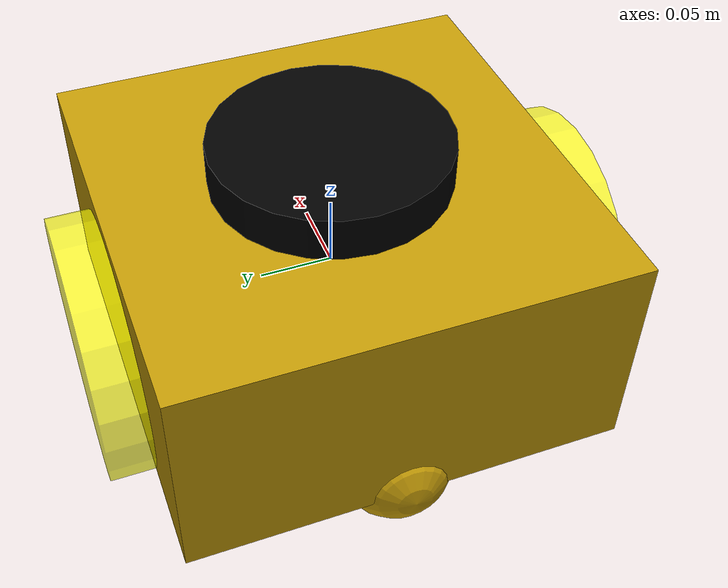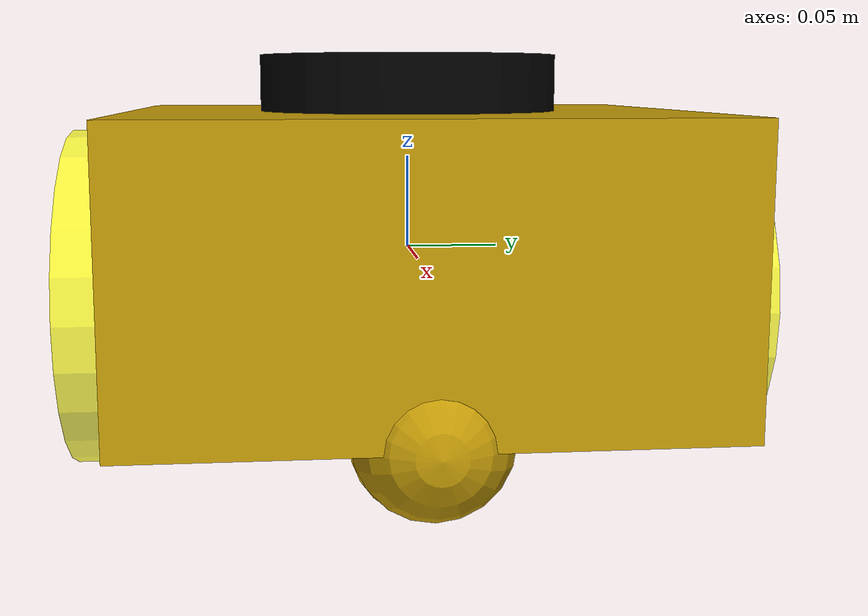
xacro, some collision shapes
<?xml version="1.0"?>
<robot name="diffbot" xmlns:xacro="http://www.ros.org/wiki/xacro">

    <material name="yellow_light">
        <color rgba="1.0 1.0 0.0 0.7"/>
    </material>

    <material name ='wooden'>
        <color rgba='0.76 0.60 0.024 1'/>
    </material>

    <material name ='black'>
        <color rgba='0.0 0.0 0.0 1'/>
    </material>

    <link name="base_link">
    </link>

    <link name="base_footprint">
    </link>

    <joint name="footprint_joint" type="fixed">
        <parent link="base_link"/>
        <child link="base_footprint"/>
        <origin xyz="0 0 0" rpy="0 0 0"/>
    </joint>

    <!-- B O D Y - Updated to 30x30cm -->
    <link name="chassis">
        <visual>
            <geometry>
                <box size="0.3 0.3 0.15"/>
            </geometry>
            <material name="wooden"/>
        </visual>

        <collision>
            <geometry>
                <box size="0.3 0.3 0.15"/>
            </geometry>
        </collision>

        <inertial>
            <mass value="0.1"/>
            <origin rpy="0 0 0" xyz="0 0 0"/>
            <!-- Updated inertia for 30x30cm chassis -->
            <inertia ixx="0.001125" ixy="0" ixz="0" iyy="0.001125" iyz="0" izz="0.0015"/>
        </inertial>

    </link>

    <joint name="base_link_joint" type="fixed">
        <origin rpy="0 0 1.57" xyz="0 0 0" />
        <parent link="base_link" />
        <child link="chassis" />
    </joint>

    <!-- Wheel Left - Position adjusted for 30cm width -->
    <link name="left_wheel">
        <visual>
            <origin rpy="0 1.5707 0" xyz="0 0 0"/>
            <geometry>
                <cylinder length="0.06" radius="0.09"/>
            </geometry>
            <material name="yellow_light"/>
        </visual>

        <collision>
            <origin rpy="0 1.5707 0" xyz="0 0 0"/>
            <geometry>
                <cylinder length="0.06" radius="0.09"/>
            </geometry>
        </collision>

        <inertial>
            <origin rpy="0 1.5707 0" xyz="0 0 0"/>
            <mass value="0.1"/>
            <inertia ixx="0.00023250000000000004" ixy="0" ixz="0" iyy="0.00023250000000000004" iyz="0" izz="0.000405"/>
        </inertial>
    </link>

    <gazebo reference="left_wheel">
        <kp>100000000000000000000.0</kp>
        <kd>100000000000000000000.0</kd>
        <mu1>10</mu1>
        <mu2>10</mu2>
        <material>Gazebo/Black</material>
    </gazebo>

    <joint name="joint_left_wheel" type="continuous">
        <!-- Updated position: 15cm from center for 30cm chassis -->
        <origin rpy="0 0 0" xyz="0.15 0 -0.025"/>
        <child link="left_wheel"/>
        <parent link="chassis"/>
        <axis rpy="0 0 0" xyz="1 0 0"/>
        <limit effort="10000" velocity="1000"/>
        <joint_properties damping="1.0" friction="1.0"/>
    </joint>

    <!-- Wheel Right - Position adjusted for 30cm width -->
    <link name="right_wheel">
        <visual>
            <origin rpy="0 1.5707 0" xyz="0 0 0"/>
            <geometry>
                <cylinder length="0.06" radius="0.09"/>
            </geometry>
            <material name="yellow_light"/>
        </visual>

        <collision>
            <origin rpy="0 1.5707 0" xyz="0 0 0"/>
            <geometry>
                <cylinder length="0.06" radius="0.09"/>
            </geometry>
        </collision>

        <inertial>
            <origin rpy="0 1.5707 0" xyz="0 0 0"/>
            <mass value="0.1"/>
            <inertia ixx="0.00023250000000000004" ixy="0" ixz="0" iyy="0.00023250000000000004" iyz="0" izz="0.000405"/>
        </inertial>
    </link>

    <gazebo reference="right_wheel">
        <kp>100000000000000000000.0</kp>
        <kd>100000000000000000000.0</kd>
        <mu1>10</mu1>
        <mu2>10</mu2>
        <material>Gazebo/Black</material>
    </gazebo>

    <joint name="joint_right_wheel" type="continuous">
        <!-- Updated position: -15cm from center for 30cm chassis -->
        <origin rpy="0 0 0" xyz="-0.15 0 -0.025"/>
        <child link="right_wheel"/>
        <parent link="chassis"/>
        <axis rpy="0 0 0" xyz="1 0 0"/>
        <limit effort="10000" velocity="1000"/>
        <joint_properties damping="1.0" friction="1.0"/>
    </joint>

    <!-- Caster Wheel Front - Position adjusted for 30cm length -->
    <link name="front_yaw_link">
        <visual>
            <origin rpy="0 1.5707 1.5707" xyz="0 0 0"/>
            <geometry>
              <cylinder length="0.005" radius="0.04"/>
            </geometry>
            <material name="wooden"/>
        </visual>

        <collision>
            <origin rpy="0 1.5707 1.5707" xyz="0 0 0"/>
            <geometry>
                <cylinder length="0.005" radius="0.04"/>
            </geometry>
        </collision>

        <inertial>
            <origin rpy="0 1.5707 1.5707" xyz="0 0 0"/>
            <mass value="0.001"/>
            <inertia ixx="4.020833333333333e-07" ixy="0" ixz="0" iyy="4.020833333333333e-07" iyz="0" izz="8.000000000000001e-07"/>
        </inertial>
    </link>

    <joint name="front_yaw_joint" type="continuous">
        <!-- Updated position: 12cm from center for 30cm chassis (leaving 6cm margin) -->
        <origin rpy="0 0 0" xyz="0 -0.12 -0.075"/>
        <parent link="chassis" />
        <child link="front_yaw_link" />
        <axis xyz="0 0 1" />
        <limit effort="1000.0" velocity="100.0" />
        <dynamics damping="0.0" friction="0.1"/>
    </joint>

    <gazebo reference="front_yaw_link">
        <material>Gazebo/Purple</material>
    </gazebo>

    <link name="front_roll_link">
        <visual>
            <origin rpy="0 1.5707 1.5707" xyz="0 0 0"/>
            <geometry>
                <cylinder length="0.005" radius="0.04"/>
            </geometry>
            <material name="wooden"/>
        </visual>

        <collision>
            <origin rpy="0 1.5707 1.5707" xyz="0 0 0"/>
            <geometry>
                <cylinder length="0.005" radius="0.04"/>
            </geometry>
        </collision>

        <inertial>
            <origin rpy="0 1.5707 1.5707" xyz="0 0 0"/>
            <mass value="0.001"/>
            <inertia ixx="4.020833333333333e-07" ixy="0" ixz="0" iyy="4.020833333333333e-07" iyz="0" izz="8.000000000000001e-07"/>
        </inertial>
    </link>

    <joint name="front_roll_joint" type="continuous">
        <origin rpy="0 0 0" xyz="0 0 0" />
        <parent link="front_yaw_link" />
        <child link="front_roll_link" />
        <axis xyz="1 0 0" />
        <limit effort="1000.0" velocity="100.0" />
        <dynamics damping="0.0" friction="0.1"/>
    </joint>

    <gazebo reference="front_roll_link">
        <material>Gazebo/Purple</material>
    </gazebo>

    <link name="front_pitch_link">
        <visual>
            <origin rpy="0 1.5707 1.5707" xyz="0 0 0"/>
            <geometry>
                <sphere radius="0.04"/>
            </geometry>
            <material name="wooden"/>
        </visual>

        <collision>
            <origin rpy="0 1.5707 1.5707" xyz="0 0 0"/>
            <geometry>
                <sphere radius="0.04"/>
            </geometry>
        </collision>

        <inertial>
            <origin rpy="0 1.5707 1.5707" xyz="0 0 0"/>
            <mass value="0.001"/>
            <inertia ixx="6.4e-07" ixy="0" ixz="0" iyy="6.4e-07" iyz="0" izz="6.4e-07"/>
        </inertial>
    </link>

    <gazebo reference="front_pitch_link">
        <kp>100000000000000.0</kp>
        <kd>100000000000000.0</kd>
        <mu1>0.5</mu1>
        <mu2>0.5</mu2>
        <material>Gazebo/Purple</material>
    </gazebo>

    <joint name="front_pitch_joint" type="continuous">
        <origin rpy="0 0 0" xyz="0 0 0" />
        <parent link="front_roll_link" />
        <child link="front_pitch_link" />
        <axis xyz="0 1 0" />
        <limit effort="1000.0" velocity="100.0" />
        <dynamics damping="0.0" friction="0.1"/>
    </joint>

    <!-- Caster Wheel Back - Position adjusted for 30cm length -->
    <link name="back_yaw_link">
        <visual>
            <origin rpy="0 1.5707 1.5707" xyz="0 0 0"/>
            <geometry>
              <cylinder length="0.005" radius="0.04"/>
            </geometry>
            <material name="wooden"/>
        </visual>

        <collision>
            <origin rpy="0 1.5707 1.5707" xyz="0 0 0"/>
            <geometry>
                <cylinder length="0.005" radius="0.04"/>
            </geometry>
        </collision>

        <inertial>
            <origin rpy="0 1.5707 1.5707" xyz="0 0 0"/>
            <mass value="0.001"/>
            <inertia ixx="4.020833333333333e-07" ixy="0" ixz="0" iyy="4.020833333333333e-07" iyz="0" izz="8.000000000000001e-07"/>
        </inertial>
    </link>

    <joint name="back_yaw_joint" type="continuous">
        <!-- Updated position: +12cm from center for 30cm chassis (leaving 6cm margin) -->
        <origin rpy="0 0 0" xyz="0 0.12 -0.075"/>
        <parent link="chassis" />
        <child link="back_yaw_link" />
        <axis xyz="0 0 1" />
        <limit effort="1000.0" velocity="100.0" />
        <dynamics damping="0.0" friction="0.1"/>
    </joint>

    <gazebo reference="back_yaw_link">
        <material>Gazebo/Purple</material>
    </gazebo>

    <link name="back_roll_link">
        <visual>
            <origin rpy="0 1.5707 1.5707" xyz="0 0 0"/>
            <geometry>
                <cylinder length="0.005" radius="0.04"/>
            </geometry>
            <material name="wooden"/>
        </visual>

        <collision>
            <origin rpy="0 1.5707 1.5707" xyz="0 0 0"/>
            <geometry>
                <cylinder length="0.005" radius="0.04"/>
            </geometry>
        </collision>

        <inertial>
            <origin rpy="0 1.5707 1.5707" xyz="0 0 0"/>
            <mass value="0.001"/>
            <inertia ixx="4.020833333333333e-07" ixy="0" ixz="0" iyy="4.020833333333333e-07" iyz="0" izz="8.000000000000001e-07"/>
        </inertial>
    </link>

    <joint name="back_roll_joint" type="continuous">
        <origin rpy="0 0 0" xyz="0 0 0"/>
        <parent link="back_yaw_link"/>
        <child link="back_roll_link"/>
        <axis xyz="1 0 0" />
        <limit effort="1000.0" velocity="100.0" />
        <dynamics damping="0.0" friction="0.1"/>
    </joint>

    <gazebo reference="back_roll_link">
        <material>Gazebo/Purple</material>
    </gazebo>

    <link name="back_pitch_link">
        <visual>
            <origin rpy="0 1.5707 1.5707" xyz="0 0 0"/>
            <geometry>
                <sphere radius="0.04"/>
            </geometry>
            <material name="wooden"/>
        </visual>

        <collision>
            <origin rpy="0 1.5707 1.5707" xyz="0 0 0"/>
            <geometry>
                <sphere radius="0.04"/>
            </geometry>
        </collision>

        <inertial>
            <origin rpy="0 1.5707 1.5707" xyz="0 0 0"/>
            <mass value="0.001"/>
            <inertia ixx="6.4e-07" ixy="0" ixz="0" iyy="6.4e-07" iyz="0" izz="6.4e-07"/>
        </inertial>
    </link>

    <gazebo reference="back_pitch_link">
        <kp>100000000000000.0</kp>
        <kd>100000000000000.0</kd>
        <mu1>0.5</mu1>
        <mu2>0.5</mu2>
        <material>Gazebo/Purple</material>
    </gazebo>

    <joint name="back_pitch_joint" type="continuous">
        <origin rpy="0 0 0" xyz="0 0 0" />
        <parent link="back_roll_link" />
        <child link="back_pitch_link" />
        <axis xyz="0 1 0" />
        <limit effort="1000.0" velocity="100.0" />
        <dynamics damping="0.0" friction="0.1"/>
    </joint>

    <!-- L A S E R - Position remains optimal for sensor coverage -->
    <link name="laser_frame">
        <visual>
            <geometry>
                <mesh filename="file://$(find custom_bot)/models/rplidar.dae" scale="1.5 1.5 1.5"/>
            </geometry>
            <material name="black"/>
        </visual>
        <collision>
            <geometry>
                <cylinder radius="0.08" length="0.05"/>
            </geometry>
        </collision>
        <inertial>
            <origin xyz="0 0 0.075" rpy="0 0 0"/>
            <mass value="0.1"/>
            <inertia ixx="0.0001808333333333333" ixy="0" ixz="0" iyy="0.0001808333333333333" iyz="0" izz="0.00032"/>
        </inertial>
    </link>

    <joint name="laser_joint" type="fixed">
        <parent link="chassis"/>
        <child link="laser_frame"/>
        <origin xyz="0 0 0.08" rpy="0 0 1.57"/>
    </joint>

  <!-- Gazebo Plugin for Differential Drive - Updated wheel separation -->
  <gazebo>

    <plugin filename="gz-sim-sensors-system" name="gz::sim::systems::Sensors">
            <render_engine>ogre2</render_engine>
    </plugin>

    <plugin filename="gz-sim-diff-drive-system" name="gz::sim::systems::DiffDrive">
            <left_joint>joint_left_wheel</left_joint>
            <right_joint>joint_right_wheel</right_joint>
            <!-- Updated wheel separation for 30cm chassis: 30cm between wheels -->
            <wheel_separation>0.30</wheel_separation>
            <wheel_radius>0.09</wheel_radius>
            <odom_publish_frequency>30</odom_publish_frequency>
            <max_wheel_torque>10.0</max_wheel_torque>
            <max_wheel_acceleration>1.0</max_wheel_acceleration>
            <topic>/cmd_vel</topic>
            <odom_topic>/odom</odom_topic>
            <frame_id>odom</frame_id>
            <child_frame_id>base_link</child_frame_id>
    </plugin>

    <plugin filename="gz-sim-joint-state-publisher-system" name="gz::sim::systems::JointStatePublisher">
      <update_rate>50</update_rate>
      <joint_name>joint_left_wheel</joint_name>
      <joint_name>joint_right_wheel</joint_name>
      <topic>joint_states</topic>
      <update_rate>30</update_rate>
    </plugin>

    <plugin filename="gz-sim-odometry-publisher-system" name="gz::sim::systems::OdometryPublisher">
      <odom_frame>odom</odom_frame>
      <robot_base_frame>base_link</robot_base_frame>
      <odom_topic>/odom</odom_topic>
      <tf_topic>/tf</tf_topic>
      <dimensions>2</dimensions>
      <odom_publish_frequency>10</odom_publish_frequency>
    </plugin>
  </gazebo>

  <gazebo reference="laser_frame">
        <sensor name='gpu_lidar' type='gpu_lidar'>
            <topic>scan</topic>
            <update_rate>30</update_rate>
            <gz_frame_id>laser_frame</gz_frame_id>
            <lidar>
                <scan>
                    <horizontal>
                        <samples>360</samples>
                        <resolution>1</resolution>
                        <min_angle>-3.14</min_angle>
                        <max_angle>3.14</max_angle>
                    </horizontal>
                </scan>
                <range>
                    <min>0.05</min>
                    <max>20.0</max>
                    <resolution>0.01</resolution>
                </range>
                <noise>
                    <type>gaussian</type>
                    <mean>0.0</mean>
                    <stddev>0.001</stddev>
                </noise>
            </lidar>
            <always_on>1</always_on>
            <visualize>true</visualize>
        </sensor>
  </gazebo>
</robot>
